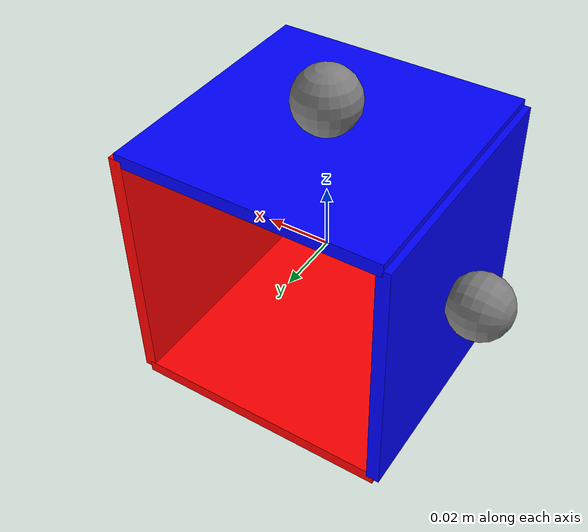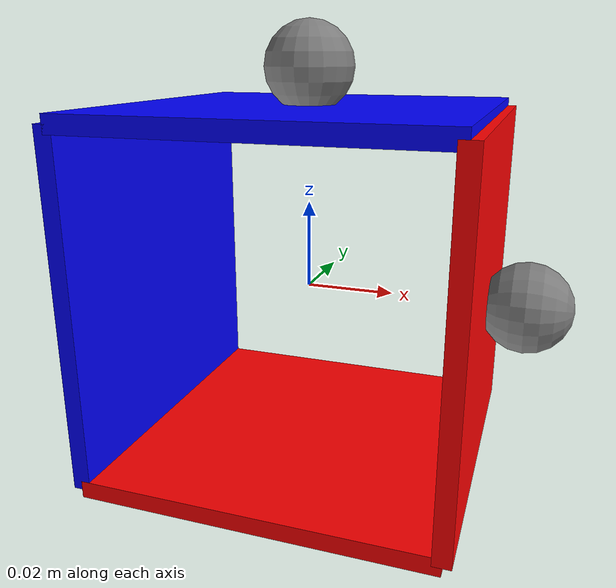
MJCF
<mujoco model="ubot_ax_centered">
  <compiler angle="degree" coordinate="local"/>
  <option gravity="0 0 -9.81"/>

  <worldbody>

    <!-- Central connector -->
    <body name="ax" pos="0 0 0">
      <!-- ax is purely structural: no geom, no connection faces -->

      <!-- Half module A (ma) -->
      <body name="ma" pos="0 0 0">
        <!-- Joint: ax -> ma -->
        <joint
          name="j_ax_ma"
          type="hinge"
          axis="1 0 0"
          pos="0 0 0"
          range="-90 90"/>

        <!-- geometry (placeholder) -->
        <geom
          name="ma_face_right"
          type="box"
          pos="0.04 0.0 0.0"
          size="0.002 0.04 0.04"
          rgba="1 0 0 1"/>
        <geom
          name="ma_face_bottom"
          type="box"
          pos="0.0 0.0 -0.04"
          size="0.04 0.04 0.002"
          rgba="1 0 0 1"/>

        <!-- sites: +Z outward normal = (origin->site), +Y = body +Y -->
        <!-- ma_connector_right: pos = +X => z = +X, y = +Y -->
        <site
          name="ma_connector_right"
          pos="0.05 0.0 0.0"
          quat="0.70710678 0 0.70710678 0"
          size="0.01"/>
        <!-- ma_connector_bottom: pos = -Z => z = -Z, y = +Y -->
        <site
          name="ma_connector_bottom"
          pos="0.0 0.0 -0.05"
          quat="0 0 1 0"
          size="0.01"/>

        <!-- Connection faces (semantic only, Phase-1) -->
        <!-- ma_right, ma_down -->
      </body>

      <!-- Half module B (mb) -->
      <body name="mb" pos="0 0 0">
        <!-- Joint: ax -> mb -->
        <joint
          name="j_ax_mb"
          type="hinge"
          axis="0 0 1"
          pos="0 0 0"
          range="-90 90"/>

        <geom
          name="mb_face_left"
          type="box"
          pos="-0.04 0.0 0.0"
          size="0.002 0.04 0.04"
          rgba="0 0 1 1"/>
        <geom
          name="mb_face_top"
          type="box"
          pos="0.0 0.0 0.04"
          size="0.04 0.04 0.002"
          rgba="0 0 1 1"/>

        <!-- mb_connector_left: pos = -X => z = -X, y = +Y -->
        <site
          name="mb_connector_left"
          pos="-0.05 0.0 0.0"
          quat="0.70710678 0 -0.70710678 0"
          size="0.01"/>
        <!-- mb_connector_up: pos = +Z => z = +Z, y = +Y -->
        <site
          name="mb_connector_top"
          pos="0.0 0.0 0.05"
          quat="1 0 0 0"
          size="0.01"/>

        <!-- Connection faces -->
        <!-- mb_left, mb_up -->
      </body>

    </body>

  </worldbody>
</mujoco>
